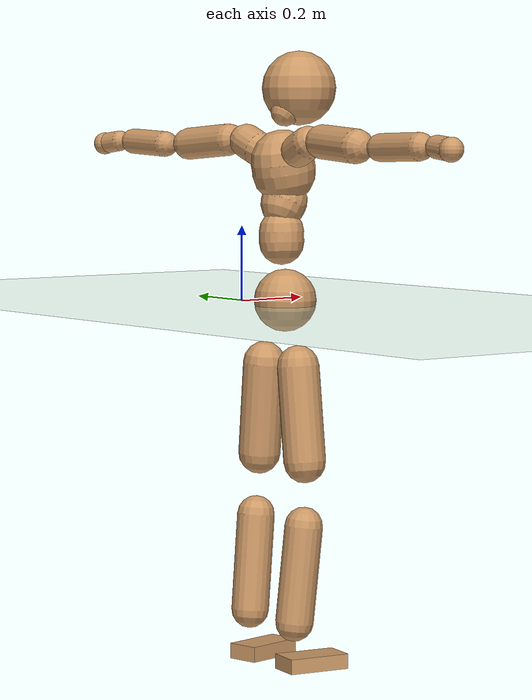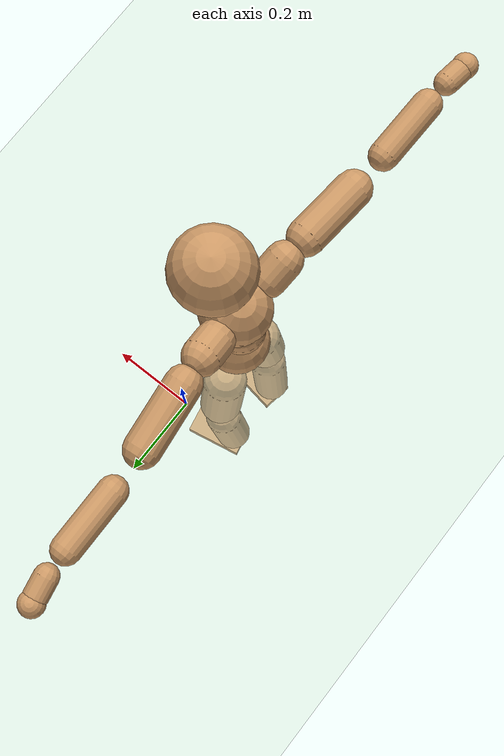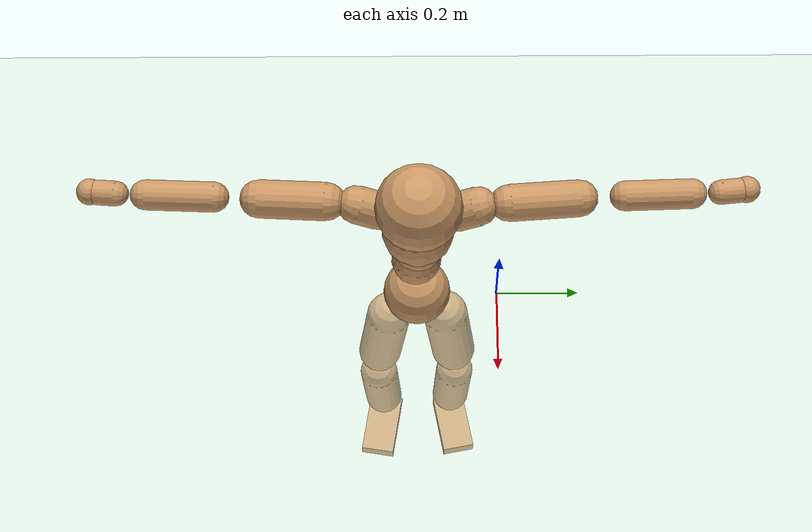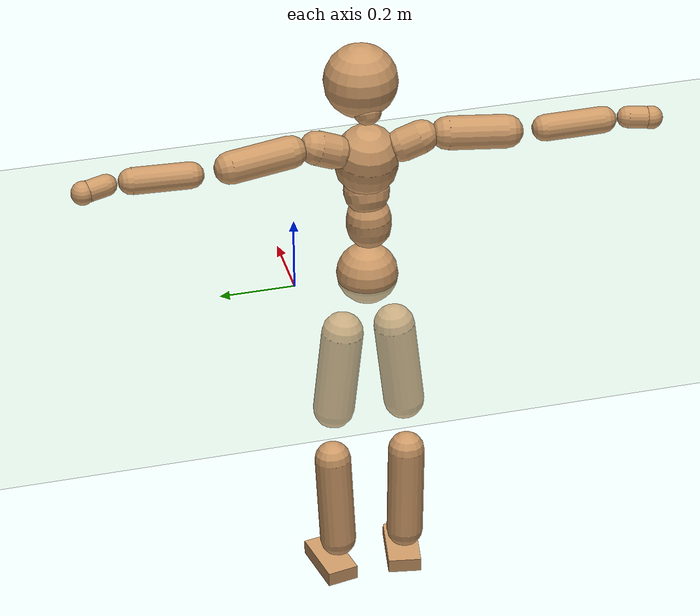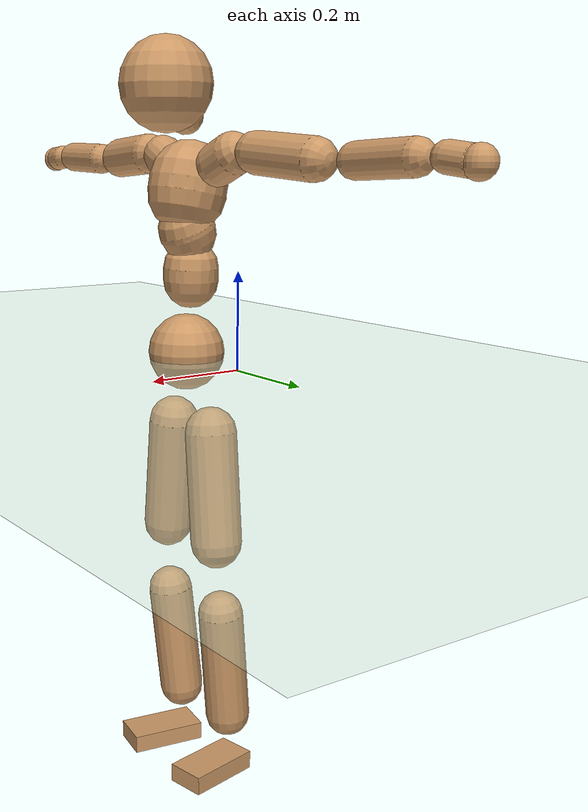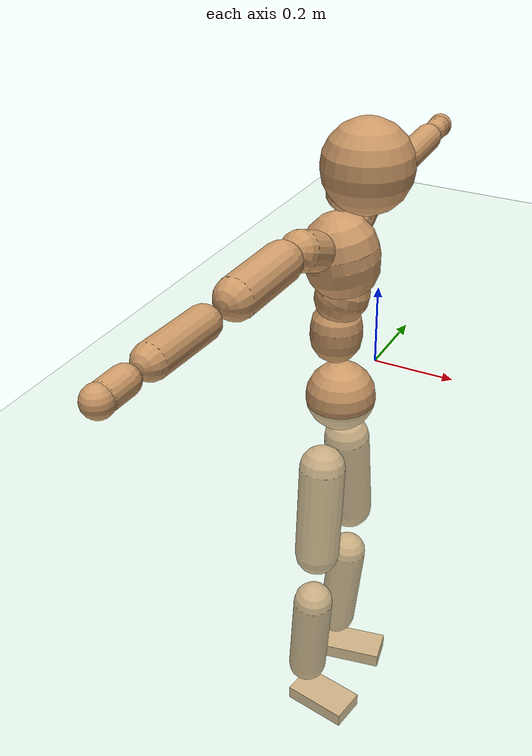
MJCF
<mujoco model="humanoid">
  <compiler coordinate="local" angle="radian"/>
  <default>
    <joint damping="0.0" armature="0.01" stiffness="0.0" limited="true"/>
    <geom conaffinity="1" condim="3" contype="7" margin="0.001" rgba="0.8 0.6 .4 1"/>
  </default>
  <asset>
    <texture type="skybox" builtin="gradient" rgb1=".4 .5 .6" rgb2="0 0 0" width="100" height="100"/>
    <texture builtin="flat" height="1278" mark="cross" markrgb="1 1 1" name="texgeom" random="0.01" rgb1="0.8 0.6 0.4" rgb2="0.8 0.6 0.4" type="cube" width="127"/>
    <texture builtin="checker" height="100" name="texplane" rgb1="0 0 0" rgb2="0.8 0.8 0.8" type="2d" width="100"/>
    <material name="MatPlane" reflectance="0.5" shininess="1" specular="1" texrepeat="60 60" texture="texplane"/>
    <material name="geom" texture="texgeom" texuniform="true"/>
  </asset>
  <worldbody>
    <light cutoff="100" diffuse="1 1 1" dir="-0 0 -1.3" directional="true" exponent="1" pos="0 0 1.3" specular=".1 .1 .1"/>
    <geom conaffinity="1" condim="3" name="floor" pos="0 0 0" rgba="0.8 0.9 0.8 1" size="100 100 .2" type="plane" material="MatPlane"/>
    <body name="Pelvis" pos="-0.0024 -0.1956 0.0122">
      <freejoint name="Pelvis"/>
      <geom type="sphere" contype="1" conaffinity="1" density="500" size="0.0821" pos="0.0000 0.0000 0.0000" name="Pelvis"/>
      <body name="L_Hip" pos="-0.0157 0.0635 -0.0874">
        <joint name="L_Hip_x" type="hinge" pos="0 0 0" axis="1 0 0" stiffness="800" damping="80" armature="0.02" range="-180.0000 180.0000"/>
        <joint name="L_Hip_y" type="hinge" pos="0 0 0" axis="0 1 0" stiffness="800" damping="80" armature="0.02" range="-180.0000 180.0000"/>
        <joint name="L_Hip_z" type="hinge" pos="0 0 0" axis="0 0 1" stiffness="800" damping="80" armature="0.02" range="-180.0000 180.0000"/>
        <geom type="capsule" contype="1" conaffinity="1" density="500" fromto="0.0008 0.0083 -0.0809 0.0034 0.0331 -0.3238" size="0.0561" name="L_Hip"/>
        <body name="L_Knee" pos="0.0042 0.0414 -0.4047">
          <joint name="L_Knee_x" type="hinge" pos="0 0 0" axis="1 0 0" stiffness="800" damping="80" armature="0.02" range="-180.0000 180.0000"/>
          <joint name="L_Knee_y" type="hinge" pos="0 0 0" axis="0 1 0" stiffness="800" damping="80" armature="0.02" range="-180.0000 180.0000"/>
          <joint name="L_Knee_z" type="hinge" pos="0 0 0" axis="0 0 1" stiffness="800" damping="80" armature="0.02" range="-180.0000 180.0000"/>
          <geom type="capsule" contype="1" conaffinity="1" density="500" fromto="-0.0082 -0.0024 -0.0846 -0.0328 -0.0095 -0.3382" size="0.0497" name="L_Knee"/>
          <body name="L_Ankle" pos="-0.041 -0.0119 -0.4228">
            <joint name="L_Ankle_x" type="hinge" pos="0 0 0" axis="1 0 0" stiffness="800" damping="80" armature="0.02" range="-180.0000 180.0000"/>
            <joint name="L_Ankle_y" type="hinge" pos="0 0 0" axis="0 1 0" stiffness="800" damping="80" armature="0.02" range="-180.0000 180.0000"/>
            <joint name="L_Ankle_z" type="hinge" pos="0 0 0" axis="0 0 1" stiffness="800" damping="80" armature="0.02" range="-180.0000 180.0000"/>
            <geom type="box" contype="1" conaffinity="1" density="500" pos="0.0589 0.0112 -0.0293" size="0.0826 0.0432 0.0204" quat="0.9956 0.0000 0.0000 0.0936" name="L_Ankle"/>
            <body name="L_Toe" pos="0.1178 0.0224 -0.0586">
              <joint name="L_Toe_x" type="hinge" pos="0 0 0" axis="1 0 0" stiffness="500" damping="50" armature="0.02" range="-180.0000 180.0000"/>
              <joint name="L_Toe_y" type="hinge" pos="0 0 0" axis="0 1 0" stiffness="500" damping="50" armature="0.02" range="-180.0000 180.0000"/>
              <joint name="L_Toe_z" type="hinge" pos="0 0 0" axis="0 0 1" stiffness="500" damping="50" armature="0.02" range="-180.0000 180.0000"/>
              <geom type="box" contype="1" conaffinity="1" density="500" pos="0.0000 0.0000 0.0299" size="0.0008 0.0022 0.001" quat="0.9950 0.0000 0.0000 0.1001" name="L_Toe"/>
            </body>
          </body>
        </body>
      </body>
      <body name="R_Hip" pos="-0.0115 -0.0616 -0.0856">
        <joint name="R_Hip_x" type="hinge" pos="0 0 0" axis="1 0 0" stiffness="800" damping="80" armature="0.02" range="-180.0000 180.0000"/>
        <joint name="R_Hip_y" type="hinge" pos="0 0 0" axis="0 1 0" stiffness="800" damping="80" armature="0.02" range="-180.0000 180.0000"/>
        <joint name="R_Hip_z" type="hinge" pos="0 0 0" axis="0 0 1" stiffness="800" damping="80" armature="0.02" range="-180.0000 180.0000"/>
        <geom type="capsule" contype="1" conaffinity="1" density="500" fromto="0.0001 -0.0093 -0.0826 0.0004 -0.0374 -0.3304" size="0.0552" name="R_Hip"/>
        <body name="R_Knee" pos="0.0004 -0.0467 -0.4131">
          <joint name="R_Knee_x" type="hinge" pos="0 0 0" axis="1 0 0" stiffness="800" damping="80" armature="0.02" range="-180.0000 180.0000"/>
          <joint name="R_Knee_y" type="hinge" pos="0 0 0" axis="0 1 0" stiffness="800" damping="80" armature="0.02" range="-180.0000 180.0000"/>
          <joint name="R_Knee_z" type="hinge" pos="0 0 0" axis="0 0 1" stiffness="800" damping="80" armature="0.02" range="-180.0000 180.0000"/>
          <geom type="capsule" contype="1" conaffinity="1" density="500" fromto="-0.0076 0.0032 -0.0843 -0.0306 0.0127 -0.3373" size="0.0501" name="R_Knee"/>
          <body name="R_Ankle" pos="-0.0382 0.0158 -0.4216">
            <joint name="R_Ankle_x" type="hinge" pos="0 0 0" axis="1 0 0" stiffness="800" damping="80" armature="0.02" range="-180.0000 180.0000"/>
            <joint name="R_Ankle_y" type="hinge" pos="0 0 0" axis="0 1 0" stiffness="800" damping="80" armature="0.02" range="-180.0000 180.0000"/>
            <joint name="R_Ankle_z" type="hinge" pos="0 0 0" axis="0 0 1" stiffness="800" damping="80" armature="0.02" range="-180.0000 180.0000"/>
            <geom type="box" contype="1" conaffinity="1" density="500" pos="0.0603 -0.0098 -0.0245" size="0.0842 0.0452 0.0197" quat="0.9968 0.0000 0.0000 -0.0805" name="R_Ankle"/>
            <body name="R_Toe" pos="0.1207 -0.0196 -0.0489">
              <joint name="R_Toe_x" type="hinge" pos="0 0 0" axis="1 0 0" stiffness="500" damping="50" armature="0.02" range="-180.0000 180.0000"/>
              <joint name="R_Toe_y" type="hinge" pos="0 0 0" axis="0 1 0" stiffness="500" damping="50" armature="0.02" range="-180.0000 180.0000"/>
              <joint name="R_Toe_z" type="hinge" pos="0 0 0" axis="0 0 1" stiffness="500" damping="50" armature="0.02" range="-180.0000 180.0000"/>
              <geom type="box" contype="1" conaffinity="1" density="500" pos="0.0000 0.0000 0.0275" size="0.0008 0.0022 0.0011" quat="0.9975 0.0000 0.0000 -0.0712" name="R_Toe"/>
            </body>
          </body>
        </body>
      </body>
      <body name="Torso" pos="-0.0132 -0.0036 0.0994">
        <joint name="Torso_x" type="hinge" pos="0 0 0" axis="1 0 0" stiffness="1000" damping="100" armature="0.02" range="-180.0000 180.0000"/>
        <joint name="Torso_y" type="hinge" pos="0 0 0" axis="0 1 0" stiffness="1000" damping="100" armature="0.02" range="-180.0000 180.0000"/>
        <joint name="Torso_z" type="hinge" pos="0 0 0" axis="0 0 1" stiffness="1000" damping="100" armature="0.02" range="-180.0000 180.0000"/>
        <geom type="capsule" contype="1" conaffinity="1" density="500" fromto="0.0002 0.0031 0.0802 0.0001 0.0021 0.0534" size="0.0592" name="Torso"/>
        <body name="Spine" pos="0.0003 0.0052 0.1336">
          <joint name="Spine_x" type="hinge" pos="0 0 0" axis="1 0 0" stiffness="1000" damping="100" armature="0.02" range="-180.0000 180.0000"/>
          <joint name="Spine_y" type="hinge" pos="0 0 0" axis="0 1 0" stiffness="1000" damping="100" armature="0.02" range="-180.0000 180.0000"/>
          <joint name="Spine_z" type="hinge" pos="0 0 0" axis="0 0 1" stiffness="1000" damping="100" armature="0.02" range="-180.0000 180.0000"/>
          <geom type="capsule" contype="1" conaffinity="1" density="500" fromto="0.0129 0.0012 0.0294 0.0086 0.0008 0.0196" size="0.0604" name="Spine"/>
          <body name="Chest" pos="0.0216 0.002 0.049">
            <joint name="Chest_x" type="hinge" pos="0 0 0" axis="1 0 0" stiffness="1000" damping="100" armature="0.02" range="-180.0000 180.0000"/>
            <joint name="Chest_y" type="hinge" pos="0 0 0" axis="0 1 0" stiffness="1000" damping="100" armature="0.02" range="-180.0000 180.0000"/>
            <joint name="Chest_z" type="hinge" pos="0 0 0" axis="0 0 1" stiffness="1000" damping="100" armature="0.02" range="-180.0000 180.0000"/>
            <geom type="capsule" contype="1" conaffinity="1" density="500" fromto="-0.0161 -0.0014 0.0806 -0.0107 -0.0009 0.0537" size="0.0834" name="Chest"/>
            <body name="Neck" pos="-0.021 -0.0049 0.1948">
              <joint name="Neck_x" type="hinge" pos="0 0 0" axis="1 0 0" stiffness="500" damping="50" armature="0.02" range="-180.0000 180.0000"/>
              <joint name="Neck_y" type="hinge" pos="0 0 0" axis="0 1 0" stiffness="500" damping="50" armature="0.02" range="-180.0000 180.0000"/>
              <joint name="Neck_z" type="hinge" pos="0 0 0" axis="0 0 1" stiffness="500" damping="50" armature="0.02" range="-180.0000 180.0000"/>
              <geom type="capsule" contype="1" conaffinity="1" density="500" fromto="0.0121 0.0011 0.0152 0.0483 0.0046 0.0610" size="0.0385" name="Neck"/>
              <body name="Head" pos="0.0604 0.0057 0.0762">
                <joint name="Head_x" type="hinge" pos="0 0 0" axis="1 0 0" stiffness="500" damping="50" armature="0.02" range="-180.0000 180.0000"/>
                <joint name="Head_y" type="hinge" pos="0 0 0" axis="0 1 0" stiffness="500" damping="50" armature="0.02" range="-180.0000 180.0000"/>
                <joint name="Head_z" type="hinge" pos="0 0 0" axis="0 0 1" stiffness="500" damping="50" armature="0.02" range="-180.0000 180.0000"/>
                <geom type="sphere" contype="1" conaffinity="1" density="500" size="0.0971" pos="0.0000 0.0000 0.0000" name="Head"/>
              </body>
            </body>
            <body name="L_Thorax" pos="-0.0274 0.0705 0.1053">
              <joint name="L_Thorax_x" type="hinge" pos="0 0 0" axis="1 0 0" stiffness="500" damping="50" armature="0.02" range="-180.0000 180.0000"/>
              <joint name="L_Thorax_y" type="hinge" pos="0 0 0" axis="0 1 0" stiffness="500" damping="50" armature="0.02" range="-180.0000 180.0000"/>
              <joint name="L_Thorax_z" type="hinge" pos="0 0 0" axis="0 0 1" stiffness="500" damping="50" armature="0.02" range="-180.0000 180.0000"/>
              <geom type="capsule" contype="1" conaffinity="1" density="500" fromto="-0.0012 0.0161 0.0069 -0.0047 0.0643 0.0275" size="0.0452" name="L_Thorax"/>
              <body name="L_Shoulder" pos="-0.0059 0.0803 0.0343">
                <joint name="L_Shoulder_x" type="hinge" pos="0 0 0" axis="1 0 0" stiffness="500" damping="50" armature="0.02" range="-720.0000 720.0000"/>
                <joint name="L_Shoulder_y" type="hinge" pos="0 0 0" axis="0 1 0" stiffness="500" damping="50" armature="0.02" range="-720.0000 720.0000"/>
                <joint name="L_Shoulder_z" type="hinge" pos="0 0 0" axis="0 0 1" stiffness="500" damping="50" armature="0.02" range="-720.0000 720.0000"/>
                <geom type="capsule" contype="1" conaffinity="1" density="500" fromto="-0.0058 0.0535 -0.0041 -0.0231 0.2138 -0.0165" size="0.0426" name="L_Shoulder"/>
                <body name="L_Elbow" pos="-0.0289 0.2673 -0.0206">
                  <joint name="L_Elbow_x" type="hinge" pos="0 0 0" axis="1 0 0" stiffness="500" damping="50" armature="0.02" range="-720.0000 720.0000"/>
                  <joint name="L_Elbow_y" type="hinge" pos="0 0 0" axis="0 1 0" stiffness="500" damping="50" armature="0.02" range="-720.0000 720.0000"/>
                  <joint name="L_Elbow_z" type="hinge" pos="0 0 0" axis="0 0 1" stiffness="500" damping="50" armature="0.02" range="-720.0000 720.0000"/>
                  <geom type="capsule" contype="1" conaffinity="1" density="500" fromto="-0.0006 0.0502 0.0022 -0.0022 0.2009 0.0088" size="0.0346" name="L_Elbow"/>
                  <body name="L_Wrist" pos="-0.0028 0.2511 0.011">
                    <joint name="L_Wrist_x" type="hinge" pos="0 0 0" axis="1 0 0" stiffness="300" damping="30" armature="0.02" range="-180.0000 180.0000"/>
                    <joint name="L_Wrist_y" type="hinge" pos="0 0 0" axis="0 1 0" stiffness="300" damping="30" armature="0.02" range="-180.0000 180.0000"/>
                    <joint name="L_Wrist_z" type="hinge" pos="0 0 0" axis="0 0 1" stiffness="300" damping="30" armature="0.02" range="-180.0000 180.0000"/>
                    <geom type="capsule" contype="1" conaffinity="1" density="500" fromto="-0.0026 0.0153 -0.0019 -0.0105 0.0611 -0.0078" size="0.0282" name="L_Wrist"/>
                    <body name="L_Hand" pos="-0.0131 0.0764 -0.0097">
                      <joint name="L_Hand_x" type="hinge" pos="0 0 0" axis="1 0 0" stiffness="300" damping="30" armature="0.02" range="-180.0000 180.0000"/>
                      <joint name="L_Hand_y" type="hinge" pos="0 0 0" axis="0 1 0" stiffness="300" damping="30" armature="0.02" range="-180.0000 180.0000"/>
                      <joint name="L_Hand_z" type="hinge" pos="0 0 0" axis="0 0 1" stiffness="300" damping="30" armature="0.02" range="-180.0000 180.0000"/>
                      <geom type="sphere" contype="1" conaffinity="1" density="500" size="0.0307" pos="0.0000 0.0000 0.0000" name="L_Hand"/>
                    </body>
                  </body>
                </body>
              </body>
            </body>
            <body name="R_Thorax" pos="-0.0321 -0.0727 0.1029">
              <joint name="R_Thorax_x" type="hinge" pos="0 0 0" axis="1 0 0" stiffness="500" damping="50" armature="0.02" range="-180.0000 180.0000"/>
              <joint name="R_Thorax_y" type="hinge" pos="0 0 0" axis="0 1 0" stiffness="500" damping="50" armature="0.02" range="-180.0000 180.0000"/>
              <joint name="R_Thorax_z" type="hinge" pos="0 0 0" axis="0 0 1" stiffness="500" damping="50" armature="0.02" range="-180.0000 180.0000"/>
              <geom type="capsule" contype="1" conaffinity="1" density="500" fromto="-0.0018 -0.0167 0.0069 -0.0072 -0.0667 0.0274" size="0.0438" name="R_Thorax"/>
              <body name="R_Shoulder" pos="-0.009 -0.0834 0.0343">
                <joint name="R_Shoulder_x" type="hinge" pos="0 0 0" axis="1 0 0" stiffness="500" damping="50" armature="0.02" range="-720.0000 720.0000"/>
                <joint name="R_Shoulder_y" type="hinge" pos="0 0 0" axis="0 1 0" stiffness="500" damping="50" armature="0.02" range="-720.0000 720.0000"/>
                <joint name="R_Shoulder_z" type="hinge" pos="0 0 0" axis="0 0 1" stiffness="500" damping="50" armature="0.02" range="-720.0000 720.0000"/>
                <geom type="capsule" contype="1" conaffinity="1" density="500" fromto="-0.0043 -0.0511 -0.0033 -0.0170 -0.2042 -0.0131" size="0.0441" name="R_Shoulder"/>
                <body name="R_Elbow" pos="-0.0213 -0.2553 -0.0164">
                  <joint name="R_Elbow_x" type="hinge" pos="0 0 0" axis="1 0 0" stiffness="500" damping="50" armature="0.02" range="-720.0000 720.0000"/>
                  <joint name="R_Elbow_y" type="hinge" pos="0 0 0" axis="0 1 0" stiffness="500" damping="50" armature="0.02" range="-720.0000 720.0000"/>
                  <joint name="R_Elbow_z" type="hinge" pos="0 0 0" axis="0 0 1" stiffness="500" damping="50" armature="0.02" range="-720.0000 720.0000"/>
                  <geom type="capsule" contype="1" conaffinity="1" density="500" fromto="-0.0015 -0.0514 0.0014 -0.0059 -0.2058 0.0055" size="0.035" name="R_Elbow"/>
                  <body name="R_Wrist" pos="-0.0074 -0.2572 0.0069">
                    <joint name="R_Wrist_x" type="hinge" pos="0 0 0" axis="1 0 0" stiffness="300" damping="30" armature="0.02" range="-180.0000 180.0000"/>
                    <joint name="R_Wrist_y" type="hinge" pos="0 0 0" axis="0 1 0" stiffness="300" damping="30" armature="0.02" range="-180.0000 180.0000"/>
                    <joint name="R_Wrist_z" type="hinge" pos="0 0 0" axis="0 0 1" stiffness="300" damping="30" armature="0.02" range="-180.0000 180.0000"/>
                    <geom type="capsule" contype="1" conaffinity="1" density="500" fromto="-0.0019 -0.0152 -0.0014 -0.0077 -0.0609 -0.0056" size="0.0288" name="R_Wrist"/>
                    <body name="R_Hand" pos="-0.0096 -0.0761 -0.007">
                      <joint name="R_Hand_x" type="hinge" pos="0 0 0" axis="1 0 0" stiffness="300" damping="30" armature="0.02" range="-180.0000 180.0000"/>
                      <joint name="R_Hand_y" type="hinge" pos="0 0 0" axis="0 1 0" stiffness="300" damping="30" armature="0.02" range="-180.0000 180.0000"/>
                      <joint name="R_Hand_z" type="hinge" pos="0 0 0" axis="0 0 1" stiffness="300" damping="30" armature="0.02" range="-180.0000 180.0000"/>
                      <geom type="sphere" contype="1" conaffinity="1" density="500" size="0.0305" pos="0.0000 0.0000 0.0000" name="R_Hand"/>
                    </body>
                  </body>
                </body>
              </body>
            </body>
          </body>
        </body>
      </body>
    </body>
  </worldbody>
  <actuator>
    <motor name="L_Hip_x" joint="L_Hip_x" gear="500"/>
    <motor name="L_Hip_y" joint="L_Hip_y" gear="500"/>
    <motor name="L_Hip_z" joint="L_Hip_z" gear="500"/>
    <motor name="L_Knee_x" joint="L_Knee_x" gear="500"/>
    <motor name="L_Knee_y" joint="L_Knee_y" gear="500"/>
    <motor name="L_Knee_z" joint="L_Knee_z" gear="500"/>
    <motor name="L_Ankle_x" joint="L_Ankle_x" gear="500"/>
    <motor name="L_Ankle_y" joint="L_Ankle_y" gear="500"/>
    <motor name="L_Ankle_z" joint="L_Ankle_z" gear="500"/>
    <motor name="L_Toe_x" joint="L_Toe_x" gear="500"/>
    <motor name="L_Toe_y" joint="L_Toe_y" gear="500"/>
    <motor name="L_Toe_z" joint="L_Toe_z" gear="500"/>
    <motor name="R_Hip_x" joint="R_Hip_x" gear="500"/>
    <motor name="R_Hip_y" joint="R_Hip_y" gear="500"/>
    <motor name="R_Hip_z" joint="R_Hip_z" gear="500"/>
    <motor name="R_Knee_x" joint="R_Knee_x" gear="500"/>
    <motor name="R_Knee_y" joint="R_Knee_y" gear="500"/>
    <motor name="R_Knee_z" joint="R_Knee_z" gear="500"/>
    <motor name="R_Ankle_x" joint="R_Ankle_x" gear="500"/>
    <motor name="R_Ankle_y" joint="R_Ankle_y" gear="500"/>
    <motor name="R_Ankle_z" joint="R_Ankle_z" gear="500"/>
    <motor name="R_Toe_x" joint="R_Toe_x" gear="500"/>
    <motor name="R_Toe_y" joint="R_Toe_y" gear="500"/>
    <motor name="R_Toe_z" joint="R_Toe_z" gear="500"/>
    <motor name="Torso_x" joint="Torso_x" gear="500"/>
    <motor name="Torso_y" joint="Torso_y" gear="500"/>
    <motor name="Torso_z" joint="Torso_z" gear="500"/>
    <motor name="Spine_x" joint="Spine_x" gear="500"/>
    <motor name="Spine_y" joint="Spine_y" gear="500"/>
    <motor name="Spine_z" joint="Spine_z" gear="500"/>
    <motor name="Chest_x" joint="Chest_x" gear="500"/>
    <motor name="Chest_y" joint="Chest_y" gear="500"/>
    <motor name="Chest_z" joint="Chest_z" gear="500"/>
    <motor name="Neck_x" joint="Neck_x" gear="500"/>
    <motor name="Neck_y" joint="Neck_y" gear="500"/>
    <motor name="Neck_z" joint="Neck_z" gear="500"/>
    <motor name="Head_x" joint="Head_x" gear="500"/>
    <motor name="Head_y" joint="Head_y" gear="500"/>
    <motor name="Head_z" joint="Head_z" gear="500"/>
    <motor name="L_Thorax_x" joint="L_Thorax_x" gear="500"/>
    <motor name="L_Thorax_y" joint="L_Thorax_y" gear="500"/>
    <motor name="L_Thorax_z" joint="L_Thorax_z" gear="500"/>
    <motor name="L_Shoulder_x" joint="L_Shoulder_x" gear="500"/>
    <motor name="L_Shoulder_y" joint="L_Shoulder_y" gear="500"/>
    <motor name="L_Shoulder_z" joint="L_Shoulder_z" gear="500"/>
    <motor name="L_Elbow_x" joint="L_Elbow_x" gear="500"/>
    <motor name="L_Elbow_y" joint="L_Elbow_y" gear="500"/>
    <motor name="L_Elbow_z" joint="L_Elbow_z" gear="500"/>
    <motor name="L_Wrist_x" joint="L_Wrist_x" gear="500"/>
    <motor name="L_Wrist_y" joint="L_Wrist_y" gear="500"/>
    <motor name="L_Wrist_z" joint="L_Wrist_z" gear="500"/>
    <motor name="L_Hand_x" joint="L_Hand_x" gear="500"/>
    <motor name="L_Hand_y" joint="L_Hand_y" gear="500"/>
    <motor name="L_Hand_z" joint="L_Hand_z" gear="500"/>
    <motor name="R_Thorax_x" joint="R_Thorax_x" gear="500"/>
    <motor name="R_Thorax_y" joint="R_Thorax_y" gear="500"/>
    <motor name="R_Thorax_z" joint="R_Thorax_z" gear="500"/>
    <motor name="R_Shoulder_x" joint="R_Shoulder_x" gear="500"/>
    <motor name="R_Shoulder_y" joint="R_Shoulder_y" gear="500"/>
    <motor name="R_Shoulder_z" joint="R_Shoulder_z" gear="500"/>
    <motor name="R_Elbow_x" joint="R_Elbow_x" gear="500"/>
    <motor name="R_Elbow_y" joint="R_Elbow_y" gear="500"/>
    <motor name="R_Elbow_z" joint="R_Elbow_z" gear="500"/>
    <motor name="R_Wrist_x" joint="R_Wrist_x" gear="500"/>
    <motor name="R_Wrist_y" joint="R_Wrist_y" gear="500"/>
    <motor name="R_Wrist_z" joint="R_Wrist_z" gear="500"/>
    <motor name="R_Hand_x" joint="R_Hand_x" gear="500"/>
    <motor name="R_Hand_y" joint="R_Hand_y" gear="500"/>
    <motor name="R_Hand_z" joint="R_Hand_z" gear="500"/>
  </actuator>
  <contact>
    <exclude body1="Torso" body2="Chest"/>
    <exclude body1="Head" body2="Chest"/>
    <exclude body1="R_Knee" body2="R_Toe"/>
    <exclude body1="R_Knee" body2="L_Ankle"/>
    <exclude body1="R_Knee" body2="L_Toe"/>
    <exclude body1="L_Knee" body2="L_Toe"/>
    <exclude body1="L_Knee" body2="R_Ankle"/>
    <exclude body1="L_Knee" body2="R_Toe"/>
    <exclude body1="L_Shoulder" body2="Chest"/>
    <exclude body1="R_Shoulder" body2="Chest"/>
  </contact>
  <sensor/>
  <size njmax="700" nconmax="700"/>
</mujoco>
